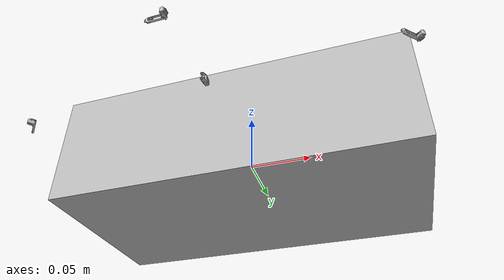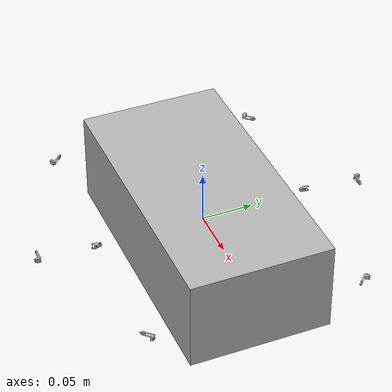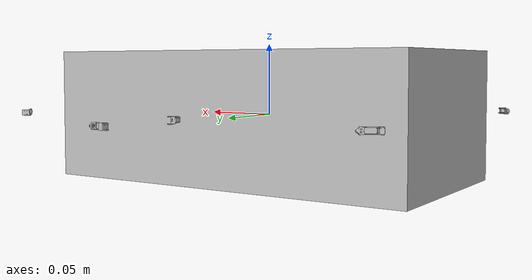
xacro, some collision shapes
<?xml version="1.0" encoding="UTF-8" ?>

<robot xmlns:xacro="http://ros.org/wiki/xacro" name="reignblaze">

	<!-- parameters -->
	<xacro:property name="pi" value="3.1415926535897931" />
	<xacro:property name="body_length_x" value="0.250" />
	<xacro:property name="body_length_y" value="0.125" />
	<xacro:property name="coxa_length" value="0.044" />
	<xacro:property name="femur_length" value="0.0545" />
	<xacro:property name="tibia_length" value="0.1019" />

	<gazebo>
		<plugin name="gazebo_ros_control" filename="libgazebo_ros_control.so">
			<robotNamespace>/reignblaze</robotNamespace>
		</plugin>
	</gazebo>

	<link name="base_link"/>

	<joint name="base_joint" type="fixed">
		<parent link="base_link" />
		<child link="body_link" />
		<origin xyz="0.0 0.0 0.0" rpy="0.0 0.0 0.0" />
	</joint>

	<link name="body_link">
		<visual>
	  		<origin xyz="0.0 0.0 0.0" rpy="${pi/2} 0.0 0.0" />
			<geometry>
				<mesh filename="package://hexapod_description/meshes/reignblaze/body.stl" scale="0.001 0.001 0.001"/>
			</geometry>
			<material name="">
				<color rgba="0.7 0.7 0.7 1" />
			</material>
		</visual>
		<collision>
			<origin xyz="0.0 0.0 0.0" rpy="${pi/2} 0.0 0.0"/>
			<geometry>
				<box size="0.27 0.09 0.138" />
			</geometry>
			<material name="">
				<color rgba="0.7 0.7 0.7 1"/>
			</material>
		</collision>
		<inertial>
			<origin xyz="0.0 0.0 0.0" rpy="${pi/2} 0.0 0.0" />
			<mass value="0.00001"/>
			<inertia
			ixx="1.0" ixy="0.0"  ixz="0.0"
			iyy="1.0" iyz="0.0"
			izz="1.0" />
		</inertial>
	</link>
	<gazebo reference="body_link">
		<material>Gazebo/DarkGrey</material>
	</gazebo>

	<!-- Head Pan and Tilt properties -->
	<joint name="head_pan_joint" type="revolute">
		<parent link="body_link"/>
		<child link="head_pan_link"/>
		<axis xyz="0.0 0.0 1.0" />
		<origin xyz="0.145 0.0 0.080" />
		<limit lower="-${3.14}" upper="${3.14}" effort="10000" velocity="100" />
	</joint>
	<link name="head_pan_link">
		<inertial>
		    	<origin xyz="0.0 0.0 0.0" rpy="0.0 0.0 0.0" />
		    	<mass value="0.00001"/>
		    	<inertia
			ixx="1.0" ixy="0.0"  ixz="0.0"
			iyy="1.0" iyz="0.0"
			izz="1.0" />
		</inertial>
	</link>
	<joint name="head_tilt_joint" type="revolute">
		<parent link="head_pan_link"/>
		<child link="head_tilt_link"/>
		<axis xyz="0.0 1.0 0.0" />
		<origin xyz="0.0 0.0 0.020" />
		<limit lower="-${3.14}" upper="${3.14}" effort="10000" velocity="100" />
	</joint>
	<link name="head_tilt_link">
		<inertial>
			<origin xyz="0.0 0.0 0.0" rpy="0.0 0.0 0.0" />
			<mass value="0.00001"/>
			<inertia
			ixx="1.0" ixy="0.0"  ixz="0.0"
			iyy="1.0" iyz="0.0"
			izz="1.0" />
		</inertial>
	</link>

	<!-- Camera properties -->
	<joint name="camera_rgb_joint" type="fixed">
		<parent link="head_tilt_link" />
		<child link="camera_rgb_optical_frame" />
		<origin xyz="0.0 0.0 0.0" rpy="${pi/2} ${pi} ${pi/2}" />
	</joint>
	<link name="camera_rgb_optical_frame">
		<inertial>
			<origin xyz="0.0 0.0 0.0" rpy="0.0 0.0 0.0" />
			<mass value="0.00001"/>
			<inertia
			ixx="1.0" ixy="0.0"  ixz="0.0"
			iyy="1.0" iyz="0.0"
			izz="1.0" />
		</inertial>
	</link>

	<joint name="camera_depth_joint" type="fixed">
		<parent link="head_tilt_link" />
		<child link="camera_depth_optical_frame" />
		<origin xyz="0.0 0.0 0.0" rpy="${pi/2} ${pi} ${pi/2}" />
	</joint>
	<link name="camera_depth_optical_frame" >
		<inertial>
			<origin xyz="0.0 0.0 0.0" rpy="0.0 0.0 0.0" />
			<mass value="0.00001"/>
			<inertia
			ixx="1.0" ixy="0.0"  ixz="0.0"
			iyy="1.0" iyz="0.0"
			izz="1.0" />
		</inertial>
	</link>

	<joint name="camera_depth_frame" type="fixed">
		<parent link="head_tilt_link" />
		<child link="camera_depth_frame_link" />
		<origin xyz="0.0 0.0 0.0" />
	</joint>

	<link name="camera_depth_frame_link" >
		<inertial>
			<origin xyz="0.0 0.0 0.0" rpy="0.0 0.0 0.0" />
			<mass value="0.00001"/>
			<inertia
			ixx="1.0" ixy="0.0"  ixz="0.0"
			iyy="1.0" iyz="0.0"
			izz="1.0" />
		</inertial>
	</link>

	<!-- IMU properties -->
	<joint name="imu_joint" type="fixed">
		<parent link="base_link" />
		<child link="imu_link" />
		<origin xyz="0.0 0.0 0.0" rpy="0.0 0.0 0.0" />
	</joint>
	<link name="imu_link">
		<inertial>
			<origin xyz="0.0 0.0 0.0" rpy="0.0 0.0 0.0" />
			<mass value="0.00001"/>
			<inertia
			ixx="1.0" ixy="0.0"  ixz="0.0"
			iyy="1.0" iyz="0.0"
			izz="1.0" />
		</inertial>
	</link>

	<!-- Joint properties -->
	<xacro:property name="joint_lower_limit" value="-${3.14}" />
	<xacro:property name="joint_upper_limit" value="${3.14}" />
	<xacro:property name="joint_effort" value="6.0" />
	<xacro:property name="joint_velocity" value="0.524" />

	<!-- Leg macro -->
	<xacro:macro name="leg" params="side position x y angle axis">

		<!-- leg position -->
		<joint name="leg_center_joint_${side}${position}" type="fixed">
			<origin xyz="${x} ${y} 0.0" rpy="0.0 0.0 0.0" />
			<parent link="body_link" />
			<child link="leg_center_${side}${position}" />
		</joint>

		<link name="leg_center_${side}${position}" >
			<inertial>
				<origin xyz="0.0 0.0 0.0" rpy="0.0 0.0 0.0" />
				<mass value="0.00001"/>
				<inertia
				ixx="1.0" ixy="0.0"  ixz="0.0"
				iyy="1.0" iyz="0.0"
				izz="1.0" />
			</inertial>
		</link>

		<!-- coxa -->
		<joint name="coxa_joint_${side}${position}" type="revolute">
			<origin xyz="0.0 0.0 0.0" rpy="0.0 0.0 ${angle}" />
			<parent link="leg_center_${side}${position}" />
			<child link="coxa_${side}${position}" />
			<axis xyz="0.0 0.0 1.0" />
			<limit lower="${joint_lower_limit}" upper="${joint_upper_limit}" effort="${joint_effort}" velocity="${joint_velocity}" />
		</joint>
		<transmission name="coxa_transmission_${side}${position}">
			<type>transmission_interface/SimpleTransmission</type>
			<joint name="coxa_joint_${side}${position}">
				<hardwareInterface>hardware_interface/EffortJointInterface</hardwareInterface>
			</joint>
			<actuator name="coxa_motor_${side}${position}">
				<hardwareInterface>hardware_interface/EffortJointInterface</hardwareInterface>
				<mechanicalReduction>1</mechanicalReduction>
			</actuator>
		</transmission>
		<link name="coxa_${side}${position}">
			<visual>
				<origin xyz="0.0 0.0 0.0" rpy="${pi/2} 0.0 ${pi/2}"/>
				<geometry>
					<mesh filename="package://hexapod_description/meshes/reignblaze/coxa.stl" scale="0.001 0.001 0.001"/>
				</geometry>
				<material name="">
					<color rgba="0.7 0.7 0.7 1"/>
				</material>
			</visual>
			<collision>
				<origin xyz="0.0 0.0 0.0" rpy="${pi/2} 0.0 ${pi/2}" />
				<geometry>
					<mesh filename="package://hexapod_description/meshes/reignblaze/coxa.stl" scale="0.001 0.001 0.001"/>
				</geometry>
				<material name="">
					<color rgba="0.7 0.7 0.7 1" />
				</material>
			</collision>
			<inertial>
				<origin xyz="0.0 0.0 0.0" rpy="${pi/2} 0.0 ${pi/2}" />
				<mass value="0.00001"/>
				<inertia
				ixx="1.0" ixy="0.0"  ixz="0.0"
				iyy="1.0" iyz="0.0"
				izz="1.0" />
		    </inertial>
		</link>
		<gazebo reference="coxa_${side}${position}">
			<material>Gazebo/DarkGrey</material>
		</gazebo>

		<!-- femur -->
		<joint name="femur_joint_${side}${position}" type="revolute">
			<origin xyz="${coxa_length} 0.0 0.0" rpy="-${pi/2} ${pi/2} 0.0" />
			<parent link="coxa_${side}${position}" />
			<child link="femur_${side}${position}" />
			<axis xyz="0.0 0.0 ${-axis}" />
			<limit lower="${joint_lower_limit}" upper="${joint_upper_limit}" effort="${joint_effort}" velocity="${joint_velocity}" />
		</joint>
		<transmission name="femur_transmission_${side}${position}">
			<type>transmission_interface/SimpleTransmission</type>
			<joint name="femur_joint_${side}${position}">
				<hardwareInterface>hardware_interface/EffortJointInterface</hardwareInterface>
			</joint>
			<actuator name="femur_motor_${side}${position}">
				<hardwareInterface>hardware_interface/EffortJointInterface</hardwareInterface>
				<mechanicalReduction>1</mechanicalReduction>
			</actuator>
		</transmission>
		<link name="femur_${side}${position}">
			<visual>
				<origin xyz="0.0 0.0 0.0" rpy="0.0 -${pi/2} ${pi/2}"/>
				<geometry>
					<mesh filename="package://hexapod_description/meshes/reignblaze/femur.stl" scale="0.001 0.001 0.001"/>
				</geometry>
				<material name="">
					<color rgba="0.7 0.7 0.7 1"/>
				</material>
			</visual>
		    	<collision>
				<origin xyz="0.0 0.0 0.0" rpy="0.0 -${pi/2} ${pi/2}" />
				<geometry>
					<mesh filename="package://hexapod_description/meshes/reignblaze/femur.stl" scale="0.001 0.001 0.001"/>
				</geometry>
				<material name="">
					<color rgba="0.7 0.7 0.7 1" />
				</material>
			</collision>
			<inertial>
				<origin xyz="0.0 0.0 0.0" rpy="0.0 -${pi/2} ${pi/2}" />
				<mass value="0.00001"/>
				<inertia
				ixx="1.0" ixy="0.0"  ixz="0.0"
				iyy="1.0" iyz="0.0"
				izz="1.0" />
			</inertial>
		</link>
		<gazebo reference="femur_${side}${position}">
			<material>Gazebo/DarkGrey</material>
		</gazebo>

		<!-- tibia -->
		<joint name="tibia_joint_${side}${position}" type="revolute">
			<origin xyz="0.0 -${femur_length} 0.0" rpy="${pi} 0.0 0.0" />
			<parent link="femur_${side}${position}" />
			<child link="tibia_${side}${position}" />
			<axis xyz="0.0 0.0 ${axis}" />
			<limit lower="${joint_lower_limit}" upper="${joint_upper_limit}" effort="${joint_effort}" velocity="${joint_velocity}" />
		</joint>
		<transmission name="tibia_transmission_${side}${position}">
			<type>transmission_interface/SimpleTransmission</type>
			<joint name="tibia_joint_${side}${position}">
				<hardwareInterface>hardware_interface/EffortJointInterface</hardwareInterface>
			</joint>
			<actuator name="tibia_motor_${side}${position}">
				<hardwareInterface>hardware_interface/EffortJointInterface</hardwareInterface>
				<mechanicalReduction>1</mechanicalReduction>
			</actuator>
		</transmission>
		<link name="tibia_${side}${position}">
			<visual>
				<origin xyz="0.0 0.0 0.0" rpy="${pi/2} -${pi/2} 0.0"/>
				<geometry>
					<mesh filename="package://hexapod_description/meshes/reignblaze/tibia.stl" scale="0.001 0.001 0.001"/>
				</geometry>
				<material name="">
					<color rgba="0.7 0.7 0.7 1"/>
				</material>
			</visual>
			<collision>
				<origin xyz="0.0 0.0 0.0" rpy="${pi/2} -${pi/2} 0.0" />
				<geometry>
					<mesh filename="package://hexapod_description/meshes/reignblaze/tibia.stl" scale="0.001 0.001 0.001"/>
				</geometry>
				<material name="">
					<color rgba="0.7 0.7 0.7 1" />
				</material>
			</collision>
			<inertial>
				<origin xyz="0.0 0.0 0.0" rpy="${pi/2} -${pi/2} 0.0" />
				<mass value="0.00001"/>
				<inertia
				ixx="1.0" ixy="0.0"  ixz="0.0"
				iyy="1.0" iyz="0.0"
				izz="1.0" />
			</inertial>
		</link>
		<gazebo reference="tibia_${side}${position}">
			<material>Gazebo/DarkGrey</material>
		</gazebo>

	</xacro:macro>

<!-- Build robot model -->
	<xacro:leg side="R" position="R" x="-0.065" y="-0.0325" angle="-${pi*3/4}" axis="1" />
	<xacro:leg side="R" position="M" x="0.0" y="-0.0625" angle="-${pi/2}" axis="1" />
	<xacro:leg side="R" position="F" x="0.065" y="-0.0325" angle="-${pi/4}" axis="1" />

	<xacro:leg side="L" position="R" x="-0.065" y="0.0325" angle="${pi*3/4}" axis="-1" />
	<xacro:leg side="L" position="M" x="0.0" y="0.0625" angle="${pi/2}" axis="-1" />
	<xacro:leg side="L" position="F" x="0.065" y="0.0325" angle="${pi/4}" axis="-1" />

</robot>
